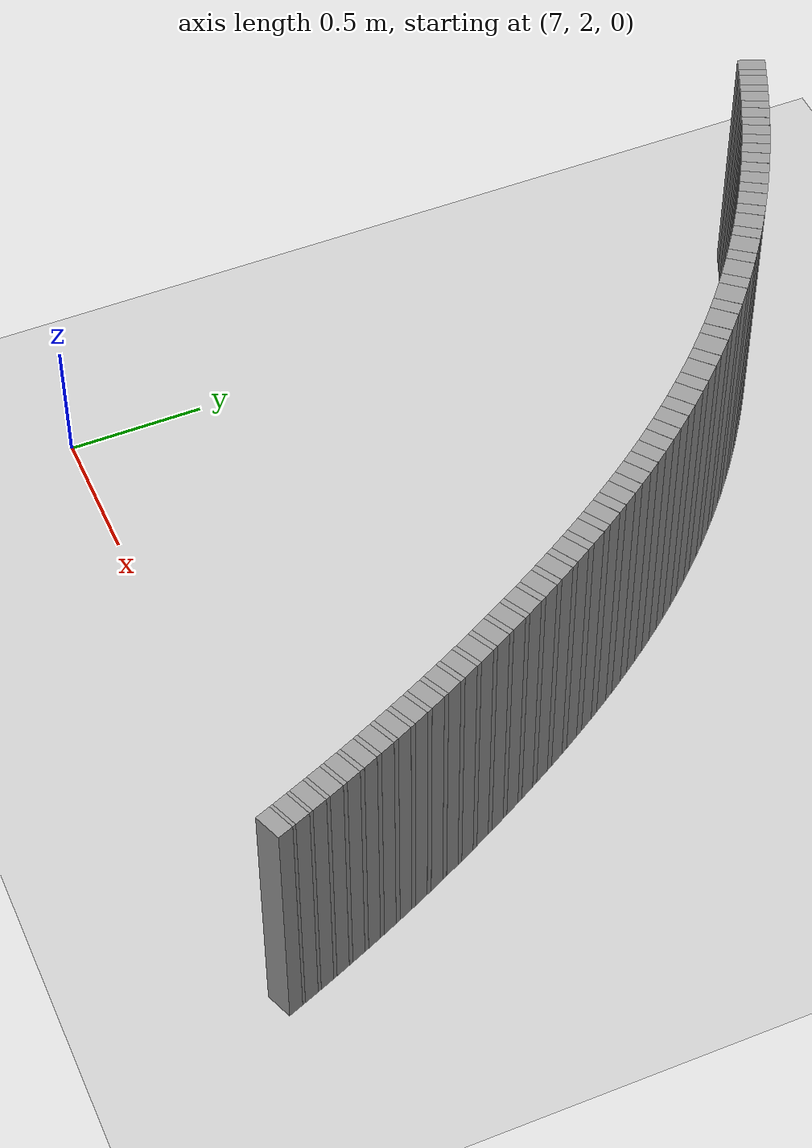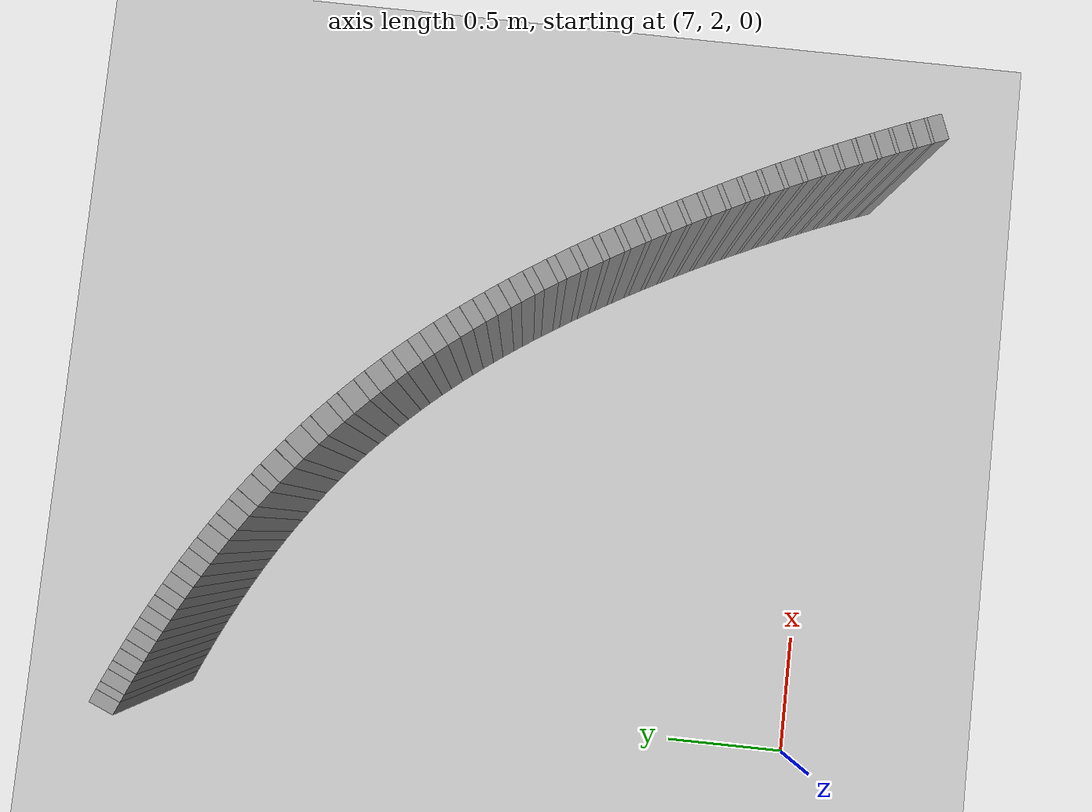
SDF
<sdf version="1.6">
 <world name="default">
  <include><uri>model://ground_plane</uri></include>
  <include><uri>model://sun</uri></include>
  <model name="wall_268_outward">
   <static>true</static>
   <link name="link">
    <collision name="collision">
     <geometry><box><size>0.0516063647858459 0.1 1.0</size></box></geometry>
    </collision>
    <visual name="visual">
     <geometry><box><size>0.0516063647858459 0.1 1.0</size></box></geometry>
     <material>
      <script><uri>file://media/materials/scripts/gazebo.material</uri><name>Gazebo/Gray</name></script>
     </material>
    </visual>
   </link>
   <pose>7.080253073074809 4.667760038448318 0.5 0 0 -0.39601819860987963</pose>
  </model>
  <model name="wall_269_outward">
   <static>true</static>
   <link name="link">
    <collision name="collision">
     <geometry><box><size>0.031169988583303544 0.1 1.0</size></box></geometry>
    </collision>
    <visual name="visual">
     <geometry><box><size>0.031169988583303544 0.1 1.0</size></box></geometry>
     <material>
      <script><uri>file://media/materials/scripts/gazebo.material</uri><name>Gazebo/Gray</name></script>
     </material>
    </visual>
   </link>
   <pose>7.118390697708541 4.651682776962022 0.5 0 0 -0.4038107746218307</pose>
  </model>
  <model name="wall_270_outward">
   <static>true</static>
   <link name="link">
    <collision name="collision">
     <geometry><box><size>0.05102715981106958 0.1 1.0</size></box></geometry>
    </collision>
    <visual name="visual">
     <geometry><box><size>0.05102715981106958 0.1 1.0</size></box></geometry>
     <material>
      <script><uri>file://media/materials/scripts/gazebo.material</uri><name>Gazebo/Gray</name></script>
     </material>
    </visual>
   </link>
   <pose>7.156104895291941 4.635351581167314 0.5 0 0 -0.41160335063380704</pose>
  </model>
  <model name="wall_271_outward">
   <static>true</static>
   <link name="link">
    <collision name="collision">
     <geometry><box><size>0.03389130507857987 0.1 1.0</size></box></geometry>
    </collision>
    <visual name="visual">
     <geometry><box><size>0.03389130507857987 0.1 1.0</size></box></geometry>
     <material>
      <script><uri>file://media/materials/scripts/gazebo.material</uri><name>Gazebo/Gray</name></script>
     </material>
    </visual>
   </link>
   <pose>7.194959955431102 4.6182331792746245 0.5 0 0 -0.4200762782823904</pose>
  </model>
  <model name="wall_272_outward">
   <static>true</static>
   <link name="link">
    <collision name="collision">
     <geometry><box><size>0.050430776725085495 0.1 1.0</size></box></geometry>
    </collision>
    <visual name="visual">
     <geometry><box><size>0.050430776725085495 0.1 1.0</size></box></geometry>
     <material>
      <script><uri>file://media/materials/scripts/gazebo.material</uri><name>Gazebo/Gray</name></script>
     </material>
    </visual>
   </link>
   <pose>7.233367466608639 4.600843936053424 0.5 0 0 -0.4285492059309481</pose>
  </model>
  <model name="wall_273_outward">
   <static>true</static>
   <link name="link">
    <collision name="collision">
     <geometry><box><size>0.03718043838161526 0.1 1.0</size></box></geometry>
    </collision>
    <visual name="visual">
     <geometry><box><size>0.03718043838161526 0.1 1.0</size></box></geometry>
     <material>
      <script><uri>file://media/materials/scripts/gazebo.material</uri><name>Gazebo/Gray</name></script>
     </material>
    </visual>
   </link>
   <pose>7.273139177934283 4.582483605716437 0.5 0 0 -0.4378444493796859</pose>
  </model>
  <model name="wall_274_outward">
   <static>true</static>
   <link name="link">
    <collision name="collision">
     <geometry><box><size>0.049822076071874194 0.1 1.0</size></box></geometry>
    </collision>
    <visual name="visual">
     <geometry><box><size>0.049822076071874194 0.1 1.0</size></box></geometry>
     <material>
      <script><uri>file://media/materials/scripts/gazebo.material</uri><name>Gazebo/Gray</name></script>
     </material>
    </visual>
   </link>
   <pose>7.312437711802996 4.563830332447013 0.5 0 0 -0.44713969282840726</pose>
  </model>
  <model name="wall_275_outward">
   <static>true</static>
   <link name="link">
    <collision name="collision">
     <geometry><box><size>0.04115001788878526 0.1 1.0</size></box></geometry>
    </collision>
    <visual name="visual">
     <geometry><box><size>0.04115001788878526 0.1 1.0</size></box></geometry>
     <material>
      <script><uri>file://media/materials/scripts/gazebo.material</uri><name>Gazebo/Gray</name></script>
     </material>
    </visual>
   </link>
   <pose>7.353359410760101 4.5439723169646555 0.5 0 0 -0.4574273787684024</pose>
  </model>
  <model name="wall_276_outward">
   <static>true</static>
   <link name="link">
    <collision name="collision">
     <geometry><box><size>0.049214630315882156 0.1 1.0</size></box></geometry>
    </collision>
    <visual name="visual">
     <geometry><box><size>0.049214630315882156 0.1 1.0</size></box></geometry>
     <material>
      <script><uri>file://media/materials/scripts/gazebo.material</uri><name>Gazebo/Gray</name></script>
     </material>
    </visual>
   </link>
   <pose>7.393783645405412 4.523791383375178 0.5 0 0 -0.4677150647083914</pose>
  </model>
  <model name="wall_277_outward">
   <static>true</static>
   <link name="link">
    <collision name="collision">
     <geometry><box><size>0.04576426751292394 0.1 1.0</size></box></geometry>
    </collision>
    <visual name="visual">
     <geometry><box><size>0.04576426751292394 0.1 1.0</size></box></geometry>
     <material>
      <script><uri>file://media/materials/scripts/gazebo.material</uri><name>Gazebo/Gray</name></script>
     </material>
    </visual>
   </link>
   <pose>7.436053397337286 4.5021478595647135 0.5 0 0 -0.4791563812034534</pose>
  </model>
  <model name="wall_278_outward">
   <static>true</static>
   <link name="link">
    <collision name="collision">
     <geometry><box><size>0.04863039326916041 0.1 1.0</size></box></geometry>
    </collision>
    <visual name="visual">
     <geometry><box><size>0.04863039326916041 0.1 1.0</size></box></geometry>
     <material>
      <script><uri>file://media/materials/scripts/gazebo.material</uri><name>Gazebo/Gray</name></script>
     </material>
    </visual>
   </link>
   <pose>7.477805894122145 4.480142310801195 0.5 0 0 -0.4905976976985535</pose>
  </model>
  <model name="wall_279_outward">
   <static>true</static>
   <link name="link">
    <collision name="collision">
     <geometry><box><size>0.05094955768476022 0.1 1.0</size></box></geometry>
    </collision>
    <visual name="visual">
     <geometry><box><size>0.05094955768476022 0.1 1.0</size></box></geometry>
     <material>
      <script><uri>file://media/materials/scripts/gazebo.material</uri><name>Gazebo/Gray</name></script>
     </material>
    </visual>
   </link>
   <pose>7.521568508480716 4.456398369629671 0.5 0 0 -0.5033354315662154</pose>
  </model>
  <model name="wall_280_outward">
   <static>true</static>
   <link name="link">
    <collision name="collision">
     <geometry><box><size>0.048098016357616194 0.1 1.0</size></box></geometry>
    </collision>
    <visual name="visual">
     <geometry><box><size>0.048098016357616194 0.1 1.0</size></box></geometry>
     <material>
      <script><uri>file://media/materials/scripts/gazebo.material</uri><name>Gazebo/Gray</name></script>
     </material>
    </visual>
   </link>
   <pose>7.564800822516758 4.432243181696583 0.5 0 0 -0.5160731654338826</pose>
  </model>
  <model name="wall_281_outward">
   <static>true</static>
   <link name="link">
    <collision name="collision">
     <geometry><box><size>0.0565333971682505 0.1 1.0</size></box></geometry>
    </collision>
    <visual name="visual">
     <geometry><box><size>0.0565333971682505 0.1 1.0</size></box></geometry>
     <material>
      <script><uri>file://media/materials/scripts/gazebo.material</uri><name>Gazebo/Gray</name></script>
     </material>
    </visual>
   </link>
   <pose>7.610103524752377 4.406080946525524 0.5 0 0 -0.5302069852946572</pose>
  </model>
  <model name="wall_282_outward">
   <static>true</static>
   <link name="link">
    <collision name="collision">
     <geometry><box><size>0.04765147935493681 0.1 1.0</size></box></geometry>
    </collision>
    <visual name="visual">
     <geometry><box><size>0.04765147935493681 0.1 1.0</size></box></geometry>
     <material>
      <script><uri>file://media/materials/scripts/gazebo.material</uri><name>Gazebo/Gray</name></script>
     </material>
    </visual>
   </link>
   <pose>7.6548714518258745 4.379447878824308 0.5 0 0 -0.5443408051554759</pose>
  </model>
  <model name="wall_283_outward">
   <static>true</static>
   <link name="link">
    <collision name="collision">
     <geometry><box><size>0.062195545859935635 0.1 1.0</size></box></geometry>
    </collision>
    <visual name="visual">
     <geometry><box><size>0.062195545859935635 0.1 1.0</size></box></geometry>
     <material>
      <script><uri>file://media/materials/scripts/gazebo.material</uri><name>Gazebo/Gray</name></script>
     </material>
    </visual>
   </link>
   <pose>7.701603188491934 4.35059379970133 0.5 0 0 -0.559890318225484</pose>
  </model>
  <model name="wall_284_outward">
   <static>true</static>
   <link name="link">
    <collision name="collision">
     <geometry><box><size>0.04732970117595756 0.1 1.0</size></box></geometry>
    </collision>
    <visual name="visual">
     <geometry><box><size>0.04732970117595756 0.1 1.0</size></box></geometry>
     <material>
      <script><uri>file://media/materials/scripts/gazebo.material</uri><name>Gazebo/Gray</name></script>
     </material>
    </visual>
   </link>
   <pose>7.747806445194113 4.321199479312671 0.5 0 0 -0.5754398312955041</pose>
  </model>
  <model name="wall_285_outward">
   <static>true</static>
   <link name="link">
    <collision name="collision">
     <geometry><box><size>0.06756052662925728 0.1 1.0</size></box></geometry>
    </collision>
    <visual name="visual">
     <geometry><box><size>0.06756052662925728 0.1 1.0</size></box></geometry>
     <material>
      <script><uri>file://media/materials/scripts/gazebo.material</uri><name>Gazebo/Gray</name></script>
     </material>
    </visual>
   </link>
   <pose>7.795685657463692 4.289461582785081 0.5 0 0 -0.5923307661156758</pose>
  </model>
  <model name="wall_286_outward">
   <static>true</static>
   <link name="link">
    <collision name="collision">
     <geometry><box><size>0.04717076383167026 0.1 1.0</size></box></geometry>
    </collision>
    <visual name="visual">
     <geometry><box><size>0.04717076383167026 0.1 1.0</size></box></geometry>
     <material>
      <script><uri>file://media/materials/scripts/gazebo.material</uri><name>Gazebo/Gray</name></script>
     </material>
    </visual>
   </link>
   <pose>7.84305339324159 4.257105940956764 0.5 0 0 -0.6092217009358157</pose>
  </model>
  <model name="wall_287_outward">
   <static>true</static>
   <link name="link">
    <collision name="collision">
     <geometry><box><size>0.0721833816383372 0.1 1.0</size></box></geometry>
    </collision>
    <visual name="visual">
     <geometry><box><size>0.0721833816383372 0.1 1.0</size></box></geometry>
     <material>
      <script><uri>file://media/materials/scripts/gazebo.material</uri><name>Gazebo/Gray</name></script>
     </material>
    </visual>
   </link>
   <pose>7.891616664854949 4.222426200032272 0.5 0 0 -0.6272685259348761</pose>
  </model>
  <model name="wall_288_outward">
   <static>true</static>
   <link name="link">
    <collision name="collision">
     <geometry><box><size>0.04720942778171306 0.1 1.0</size></box></geometry>
    </collision>
    <visual name="visual">
     <geometry><box><size>0.04720942778171306 0.1 1.0</size></box></geometry>
     <material>
      <script><uri>file://media/materials/scripts/gazebo.material</uri><name>Gazebo/Gray</name></script>
     </material>
    </visual>
   </link>
   <pose>7.9396957602056215 4.187045642256937 0.5 0 0 -0.6453153509338915</pose>
  </model>
  <model name="wall_289_outward">
   <static>true</static>
   <link name="link">
    <collision name="collision">
     <geometry><box><size>0.07552915220336574 0.1 1.0</size></box></geometry>
    </collision>
    <visual name="visual">
     <geometry><box><size>0.07552915220336574 0.1 1.0</size></box></geometry>
     <material>
      <script><uri>file://media/materials/scripts/gazebo.material</uri><name>Gazebo/Gray</name></script>
     </material>
    </visual>
   </link>
   <pose>7.988290045979889 4.149569419293267 0.5 0 0 -0.6641987612158292</pose>
  </model>
  <model name="wall_290_outward">
   <static>true</static>
   <link name="link">
    <collision name="collision">
     <geometry><box><size>0.04747261744502205 0.1 1.0</size></box></geometry>
    </collision>
    <visual name="visual">
     <geometry><box><size>0.04747261744502205 0.1 1.0</size></box></geometry>
     <material>
      <script><uri>file://media/materials/scripts/gazebo.material</uri><name>Gazebo/Gray</name></script>
     </material>
    </visual>
   </link>
   <pose>8.036436902912989 4.111308219979388 0.5 0 0 -0.6830821714977469</pose>
  </model>
  <model name="wall_291_outward">
   <static>true</static>
   <link name="link">
    <collision name="collision">
     <geometry><box><size>0.07740905343114708 0.1 1.0</size></box></geometry>
    </collision>
    <visual name="visual">
     <geometry><box><size>0.07740905343114708 0.1 1.0</size></box></geometry>
     <material>
      <script><uri>file://media/materials/scripts/gazebo.material</uri><name>Gazebo/Gray</name></script>
     </material>
    </visual>
   </link>
   <pose>8.08438955577947 4.071320010246333 0.5 0 0 -0.7024356429954967</pose>
  </model>
  <model name="wall_292_outward">
   <static>true</static>
   <link name="link">
    <collision name="collision">
     <geometry><box><size>0.04797645059830723 0.1 1.0</size></box></geometry>
    </collision>
    <visual name="visual">
     <geometry><box><size>0.04797645059830723 0.1 1.0</size></box></geometry>
     <material>
      <script><uri>file://media/materials/scripts/gazebo.material</uri><name>Gazebo/Gray</name></script>
     </material>
    </visual>
   </link>
   <pose>8.131937749340043 4.030464133107831 0.5 0 0 -0.721789114493231</pose>
  </model>
  <model name="wall_293_outward">
   <static>true</static>
   <link name="link">
    <collision name="collision">
     <geometry><box><size>0.07739045548146799 0.1 1.0</size></box></geometry>
    </collision>
    <visual name="visual">
     <geometry><box><size>0.07739045548146799 0.1 1.0</size></box></geometry>
     <material>
      <script><uri>file://media/materials/scripts/gazebo.material</uri><name>Gazebo/Gray</name></script>
     </material>
    </visual>
   </link>
   <pose>8.178489406304067 3.9884902004596055 0.5 0 0 -0.7411379356328862</pose>
  </model>
  <model name="wall_294_outward">
   <static>true</static>
   <link name="link">
    <collision name="collision">
     <geometry><box><size>0.04872167023151746 0.1 1.0</size></box></geometry>
    </collision>
    <visual name="visual">
     <geometry><box><size>0.04872167023151746 0.1 1.0</size></box></geometry>
     <material>
      <script><uri>file://media/materials/scripts/gazebo.material</uri><name>Gazebo/Gray</name></script>
     </material>
    </visual>
   </link>
   <pose>8.224684345524485 3.9455746816027473 0.5 0 0 -0.7604867567725592</pose>
  </model>
  <model name="wall_295_outward">
   <static>true</static>
   <link name="link">
    <collision name="collision">
     <geometry><box><size>0.07561181066201893 0.1 1.0</size></box></geometry>
    </collision>
    <visual name="visual">
     <geometry><box><size>0.07561181066201893 0.1 1.0</size></box></geometry>
     <material>
      <script><uri>file://media/materials/scripts/gazebo.material</uri><name>Gazebo/Gray</name></script>
     </material>
    </visual>
   </link>
   <pose>8.26922670635141 3.9022116490398857 0.5 0 0 -0.779390835358028</pose>
  </model>
  <model name="wall_296_outward">
   <static>true</static>
   <link name="link">
    <collision name="collision">
     <geometry><box><size>0.049692379155554516 0.1 1.0</size></box></geometry>
    </collision>
    <visual name="visual">
     <geometry><box><size>0.049692379155554516 0.1 1.0</size></box></geometry>
     <material>
      <script><uri>file://media/materials/scripts/gazebo.material</uri><name>Gazebo/Gray</name></script>
     </material>
    </visual>
   </link>
   <pose>8.313460500335086 3.857845887551974 0.5 0 0 -0.7982949139435327</pose>
  </model>
  <model name="wall_297_outward">
   <static>true</static>
   <link name="link">
    <collision name="collision">
     <geometry><box><size>0.07221466362774695 0.1 1.0</size></box></geometry>
    </collision>
    <visual name="visual">
     <geometry><box><size>0.07221466362774695 0.1 1.0</size></box></geometry>
     <material>
      <script><uri>file://media/materials/scripts/gazebo.material</uri><name>Gazebo/Gray</name></script>
     </material>
    </visual>
   </link>
   <pose>8.355530766604613 3.813742236496583 0.5 0 0 -0.8163495607141498</pose>
  </model>
  <model name="wall_298_outward">
   <static>true</static>
   <link name="link">
    <collision name="collision">
     <geometry><box><size>0.05085726344225865 0.1 1.0</size></box></geometry>
    </collision>
    <visual name="visual">
     <geometry><box><size>0.05085726344225865 0.1 1.0</size></box></geometry>
     <material>
      <script><uri>file://media/materials/scripts/gazebo.material</uri><name>Gazebo/Gray</name></script>
     </material>
    </visual>
   </link>
   <pose>8.397338518222835 3.7685926248917965 0.5 0 0 -0.8344042074847992</pose>
  </model>
  <model name="wall_299_outward">
   <static>true</static>
   <link name="link">
    <collision name="collision">
     <geometry><box><size>0.0675582030334034 0.1 1.0</size></box></geometry>
    </collision>
    <visual name="visual">
     <geometry><box><size>0.0675582030334034 0.1 1.0</size></box></geometry>
     <material>
      <script><uri>file://media/materials/scripts/gazebo.material</uri><name>Gazebo/Gray</name></script>
     </material>
    </visual>
   </link>
   <pose>8.436677642269427 3.724346224431522 0.5 0 0 -0.8512945613231221</pose>
  </model>
  <model name="wall_300_outward">
   <static>true</static>
   <link name="link">
    <collision name="collision">
     <geometry><box><size>0.05216880545344974 0.1 1.0</size></box></geometry>
    </collision>
    <visual name="visual">
     <geometry><box><size>0.05216880545344974 0.1 1.0</size></box></geometry>
     <material>
      <script><uri>file://media/materials/scripts/gazebo.material</uri><name>Gazebo/Gray</name></script>
     </material>
    </visual>
   </link>
   <pose>8.475794483534774 3.6790333067398953 0.5 0 0 -0.868184915161444</pose>
  </model>
  <model name="wall_301_outward">
   <static>true</static>
   <link name="link">
    <collision name="collision">
     <geometry><box><size>0.0620654923602422 0.1 1.0</size></box></geometry>
    </collision>
    <visual name="visual">
     <geometry><box><size>0.0620654923602422 0.1 1.0</size></box></geometry>
     <material>
      <script><uri>file://media/materials/scripts/gazebo.material</uri><name>Gazebo/Gray</name></script>
     </material>
    </visual>
   </link>
   <pose>8.512334430234315 3.6351356291668164 0.5 0 0 -0.8837019109337177</pose>
  </model>
  <model name="wall_302_outward">
   <static>true</static>
   <link name="link">
    <collision name="collision">
     <geometry><box><size>0.05356758185181445 0.1 1.0</size></box></geometry>
    </collision>
    <visual name="visual">
     <geometry><box><size>0.05356758185181445 0.1 1.0</size></box></geometry>
     <material>
      <script><uri>file://media/materials/scripts/gazebo.material</uri><name>Gazebo/Gray</name></script>
     </material>
    </visual>
   </link>
   <pose>8.548683755898235 3.5901769997073667 0.5 0 0 -0.8992189067059576</pose>
  </model>
  <model name="wall_303_outward">
   <static>true</static>
   <link name="link">
    <collision name="collision">
     <geometry><box><size>0.05616279122282179 0.1 1.0</size></box></geometry>
    </collision>
    <visual name="visual">
     <geometry><box><size>0.05616279122282179 0.1 1.0</size></box></geometry>
     <material>
      <script><uri>file://media/materials/scripts/gazebo.material</uri><name>Gazebo/Gray</name></script>
     </material>
    </visual>
   </link>
   <pose>8.582511678826704 3.546983110767514 0.5 0 0 -0.9132600658859212</pose>
  </model>
  <model name="wall_304_outward">
   <static>true</static>
   <link name="link">
    <collision name="collision">
     <geometry><box><size>0.05498789261907417 0.1 1.0</size></box></geometry>
    </collision>
    <visual name="visual">
     <geometry><box><size>0.05498789261907417 0.1 1.0</size></box></geometry>
     <material>
      <script><uri>file://media/materials/scripts/gazebo.material</uri><name>Gazebo/Gray</name></script>
     </material>
    </visual>
   </link>
   <pose>8.616170383367303 3.502761418982904 0.5 0 0 -0.9273012250658659</pose>
  </model>
  <model name="wall_305_outward">
   <static>true</static>
   <link name="link">
    <collision name="collision">
     <geometry><box><size>0.05023539870455018 0.1 1.0</size></box></geometry>
    </collision>
    <visual name="visual">
     <geometry><box><size>0.05023539870455018 0.1 1.0</size></box></geometry>
     <material>
      <script><uri>file://media/materials/scripts/gazebo.material</uri><name>Gazebo/Gray</name></script>
     </material>
    </visual>
   </link>
   <pose>8.647483568723475 3.46048422944133 0.5 0 0 -0.9398604049055904</pose>
  </model>
  <model name="wall_306_outward">
   <static>true</static>
   <link name="link">
    <collision name="collision">
     <geometry><box><size>0.05636109527204031 0.1 1.0</size></box></geometry>
    </collision>
    <visual name="visual">
     <geometry><box><size>0.05636109527204031 0.1 1.0</size></box></geometry>
     <material>
      <script><uri>file://media/materials/scripts/gazebo.material</uri><name>Gazebo/Gray</name></script>
     </material>
    </visual>
   </link>
   <pose>8.678637155585644 3.4172402066071452 0.5 0 0 -0.9524195847453228</pose>
  </model>
  <model name="wall_307_outward">
   <static>true</static>
   <link name="link">
    <collision name="collision">
     <geometry><box><size>0.04453944295091977 0.1 1.0</size></box></geometry>
    </collision>
    <visual name="visual">
     <geometry><box><size>0.04453944295091977 0.1 1.0</size></box></geometry>
     <material>
      <script><uri>file://media/materials/scripts/gazebo.material</uri><name>Gazebo/Gray</name></script>
     </material>
    </visual>
   </link>
   <pose>8.707680994001151 3.3759896636847384 0.5 0 0 -0.9635546755887132</pose>
  </model>
  <model name="wall_308_outward">
   <static>true</static>
   <link name="link">
    <collision name="collision">
     <geometry><box><size>0.05762078335668553 0.1 1.0</size></box></geometry>
    </collision>
    <visual name="visual">
     <geometry><box><size>0.05762078335668553 0.1 1.0</size></box></geometry>
     <material>
      <script><uri>file://media/materials/scripts/gazebo.material</uri><name>Gazebo/Gray</name></script>
     </material>
    </visual>
   </link>
   <pose>8.736563063852138 3.3338598114457225 0.5 0 0 -0.9746897664321592</pose>
  </model>
  <model name="wall_309_outward">
   <static>true</static>
   <link name="link">
    <collision name="collision">
     <geometry><box><size>0.03936391019920161 0.1 1.0</size></box></geometry>
    </collision>
    <visual name="visual">
     <geometry><box><size>0.03936391019920161 0.1 1.0</size></box></geometry>
     <material>
      <script><uri>file://media/materials/scripts/gazebo.material</uri><name>Gazebo/Gray</name></script>
     </material>
    </visual>
   </link>
   <pose>8.76362705164242 3.293623095075914 0.5 0 0 -0.9845309028301754</pose>
  </model>
  <model name="wall_310_outward">
   <static>true</static>
   <link name="link">
    <collision name="collision">
     <geometry><box><size>0.05870847908754893 0.1 1.0</size></box></geometry>
    </collision>
    <visual name="visual">
     <geometry><box><size>0.05870847908754893 0.1 1.0</size></box></geometry>
     <material>
      <script><uri>file://media/materials/scripts/gazebo.material</uri><name>Gazebo/Gray</name></script>
     </material>
    </visual>
   </link>
   <pose>8.790515097035058 3.252616687689755 0.5 0 0 -0.9943720392282176</pose>
  </model>
  <model name="wall_311_outward">
   <static>true</static>
   <link name="link">
    <collision name="collision">
     <geometry><box><size>0.03477562029848963 0.1 1.0</size></box></geometry>
    </collision>
    <visual name="visual">
     <geometry><box><size>0.03477562029848963 0.1 1.0</size></box></geometry>
     <material>
      <script><uri>file://media/materials/scripts/gazebo.material</uri><name>Gazebo/Gray</name></script>
     </material>
    </visual>
   </link>
   <pose>8.81586379259873 3.2133455244337417 0.5 0 0 -1.0030660538265521</pose>
  </model>
  <model name="wall_312_outward">
   <static>true</static>
   <link name="link">
    <collision name="collision">
     <geometry><box><size>0.0595758454590209 0.1 1.0</size></box></geometry>
    </collision>
    <visual name="visual">
     <geometry><box><size>0.0595758454590209 0.1 1.0</size></box></geometry>
     <material>
      <script><uri>file://media/materials/scripts/gazebo.material</uri><name>Gazebo/Gray</name></script>
     </material>
    </visual>
   </link>
   <pose>8.84101216515159 3.1734322436694242 0.5 0 0 -1.011760068424911</pose>
  </model>
  <model name="wall_313_outward">
   <static>true</static>
   <link name="link">
    <collision name="collision">
     <geometry><box><size>0.03084560427614737 0.1 1.0</size></box></geometry>
    </collision>
    <visual name="visual">
     <geometry><box><size>0.03084560427614737 0.1 1.0</size></box></geometry>
     <material>
      <script><uri>file://media/materials/scripts/gazebo.material</uri><name>Gazebo/Gray</name></script>
     </material>
    </visual>
   </link>
   <pose>8.864889481615432 3.1350414103651185 0.5 0 0 -1.0194715459233323</pose>
  </model>
  <model name="wall_314_outward">
   <static>true</static>
   <link name="link">
    <collision name="collision">
     <geometry><box><size>0.060190793125698645 0.1 1.0</size></box></geometry>
    </collision>
    <visual name="visual">
     <geometry><box><size>0.060190793125698645 0.1 1.0</size></box></geometry>
     <material>
      <script><uri>file://media/materials/scripts/gazebo.material</uri><name>Gazebo/Gray</name></script>
     </material>
    </visual>
   </link>
   <pose>8.888534490731583 3.096146778921461 0.5 0 0 -1.0271830234217</pose>
  </model>
  <model name="wall_315_outward">
   <static>true</static>
   <link name="link">
    <collision name="collision">
     <geometry><box><size>0.027577057920390217 0.1 1.0</size></box></geometry>
    </collision>
    <visual name="visual">
     <geometry><box><size>0.027577057920390217 0.1 1.0</size></box></geometry>
     <material>
      <script><uri>file://media/materials/scripts/gazebo.material</uri><name>Gazebo/Gray</name></script>
     </material>
    </visual>
   </link>
   <pose>8.911151124431381 3.0585400365044793 0.5 0 0 -1.0340773425180727</pose>
  </model>
  <model name="wall_316_outward">
   <static>true</static>
   <link name="link">
    <collision name="collision">
     <geometry><box><size>0.060536118994963466 0.1 1.0</size></box></geometry>
    </collision>
    <visual name="visual">
     <geometry><box><size>0.060536118994963466 0.1 1.0</size></box></geometry>
     <material>
      <script><uri>file://media/materials/scripts/gazebo.material</uri><name>Gazebo/Gray</name></script>
     </material>
    </visual>
   </link>
   <pose>8.93349839634538 3.0205721212708836 0.5 0 0 -1.0409716616144071</pose>
  </model>
  <model name="wall_317_outward">
   <static>true</static>
   <link name="link">
    <collision name="collision">
     <geometry><box><size>0.024992972010634523 0.1 1.0</size></box></geometry>
    </collision>
    <visual name="visual">
     <geometry><box><size>0.024992972010634523 0.1 1.0</size></box></geometry>
     <material>
      <script><uri>file://media/materials/scripts/gazebo.material</uri><name>Gazebo/Gray</name></script>
     </material>
    </visual>
   </link>
   <pose>8.955043331050266 2.9836315287795077 0.5 0 0 -1.0472199452735342</pose>
  </model>
  <model name="wall_318_outward">
   <static>true</static>
   <link name="link">
    <collision name="collision">
     <geometry><box><size>0.06061205123044814 0.1 1.0</size></box></geometry>
    </collision>
    <visual name="visual">
     <geometry><box><size>0.06061205123044814 0.1 1.0</size></box></geometry>
     <material>
      <script><uri>file://media/materials/scripts/gazebo.material</uri><name>Gazebo/Gray</name></script>
     </material>
    </visual>
   </link>
   <pose>8.976279468785922 2.9464688234209526 0.5 0 0 -1.0534682289327477</pose>
  </model>
  <model name="wall_319_outward">
   <static>true</static>
   <link name="link">
    <collision name="collision">
     <geometry><box><size>0.02301454917684403 0.1 1.0</size></box></geometry>
    </collision>
    <visual name="visual">
     <geometry><box><size>0.02301454917684403 0.1 1.0</size></box></geometry>
     <material>
      <script><uri>file://media/materials/scripts/gazebo.material</uri><name>Gazebo/Gray</name></script>
     </material>
    </visual>
   </link>
   <pose>8.99690100038205 2.9100944785656235 0.5 0 0 -1.0592218979724781</pose>
  </model>
  <model name="wall_320_outward">
   <static>true</static>
   <link name="link">
    <collision name="collision">
     <geometry><box><size>0.060435112909367816 0.1 1.0</size></box></geometry>
    </collision>
    <visual name="visual">
     <geometry><box><size>0.060435112909367816 0.1 1.0</size></box></geometry>
     <material>
      <script><uri>file://media/materials/scripts/gazebo.material</uri><name>Gazebo/Gray</name></script>
     </material>
    </visual>
   </link>
   <pose>9.01717557411622 2.8736267987068853 0.5 0 0 -1.0649755670122396</pose>
  </model>
  <model name="wall_321_outward">
   <static>true</static>
   <link name="link">
    <collision name="collision">
     <geometry><box><size>0.02159107303053125 0.1 1.0</size></box></geometry>
    </collision>
    <visual name="visual">
     <geometry><box><size>0.02159107303053125 0.1 1.0</size></box></geometry>
     <material>
      <script><uri>file://media/materials/scripts/gazebo.material</uri><name>Gazebo/Gray</name></script>
     </material>
    </visual>
   </link>
   <pose>9.036996415951574 2.8377213879827385 0.5 0 0 -1.0703733614817186</pose>
  </model>
  <model name="wall_322_outward">
   <static>true</static>
   <link name="link">
    <collision name="collision">
     <geometry><box><size>0.060036297031444495 0.1 1.0</size></box></geometry>
    </collision>
    <visual name="visual">
     <geometry><box><size>0.060036297031444495 0.1 1.0</size></box></geometry>
     <material>
      <script><uri>file://media/materials/scripts/gazebo.material</uri><name>Gazebo/Gray</name></script>
     </material>
    </visual>
   </link>
   <pose>9.05643631410111 2.801834930873734 0.5 0 0 -1.0757711559511367</pose>
  </model>
  <model name="wall_323_outward">
   <static>true</static>
   <link name="link">
    <collision name="collision">
     <geometry><box><size>0.02062314398982755 0.1 1.0</size></box></geometry>
    </collision>
    <visual name="visual">
     <geometry><box><size>0.02062314398982755 0.1 1.0</size></box></geometry>
     <material>
      <script><uri>file://media/materials/scripts/gazebo.material</uri><name>Gazebo/Gray</name></script>
     </material>
    </visual>
   </link>
   <pose>9.075548253754198 2.766321385696897 0.5 0 0 -1.0809269647908146</pose>
  </model>
  <model name="wall_324_outward">
   <static>true</static>
   <link name="link">
    <collision name="collision">
     <geometry><box><size>0.059456959012732145 0.1 1.0</size></box></geometry>
    </collision>
    <visual name="visual">
     <geometry><box><size>0.059456959012732145 0.1 1.0</size></box></geometry>
     <material>
      <script><uri>file://media/materials/scripts/gazebo.material</uri><name>Gazebo/Gray</name></script>
     </material>
    </visual>
   </link>
   <pose>9.094252089393171 2.730918502934616 0.5 0 0 -1.0860827736305216</pose>
  </model>
  <model name="wall_325_outward">
   <static>true</static>
   <link name="link">
    <collision name="collision">
     <geometry><box><size>0.02003975325977494 0.1 1.0</size></box></geometry>
    </collision>
    <visual name="visual">
     <geometry><box><size>0.02003975325977494 0.1 1.0</size></box></geometry>
     <material>
      <script><uri>file://media/materials/scripts/gazebo.material</uri><name>Gazebo/Gray</name></script>
     </material>
    </visual>
   </link>
   <pose>9.112728556753733 2.6957255420924833 0.5 0 0 -1.09109273290351</pose>
  </model>
  <model name="wall_326_outward">
   <static>true</static>
   <link name="link">
    <collision name="collision">
     <geometry><box><size>0.0587482521059671 0.1 1.0</size></box></geometry>
    </collision>
    <visual name="visual">
     <geometry><box><size>0.0587482521059671 0.1 1.0</size></box></geometry>
     <material>
      <script><uri>file://media/materials/scripts/gazebo.material</uri><name>Gazebo/Gray</name></script>
     </material>
    </visual>
   </link>
   <pose>9.130778806216064 2.6607102803589004 0.5 0 0 -1.0961026921765182</pose>
  </model>
  <model name="wall_327_outward">
   <static>true</static>
   <link name="link">
    <collision name="collision">
     <geometry><box><size>0.01978572759164311 0.1 1.0</size></box></geometry>
    </collision>
    <visual name="visual">
     <geometry><box><size>0.01978572759164311 0.1 1.0</size></box></geometry>
     <material>
      <script><uri>file://media/materials/scripts/gazebo.material</uri><name>Gazebo/Gray</name></script>
     </material>
    </visual>
   </link>
   <pose>9.148682832147152 2.6257626733281203 0.5 0 0 -1.1010491442454906</pose>
  </model>
  <model name="wall_328_outward">
   <static>true</static>
   <link name="link">
    <collision name="collision">
     <geometry><box><size>0.057964770968524267 0.1 1.0</size></box></geometry>
    </collision>
    <visual name="visual">
     <geometry><box><size>0.057964770968524267 0.1 1.0</size></box></geometry>
     <material>
      <script><uri>file://media/materials/scripts/gazebo.material</uri><name>Gazebo/Gray</name></script>
     </material>
    </visual>
   </link>
   <pose>9.16615214458931 2.5910337068283624 0.5 0 0 -1.1059955963145276</pose>
  </model>
  <model name="wall_329_outward">
   <static>true</static>
   <link name="link">
    <collision name="collision">
     <geometry><box><size>0.019632406574356772 0.1 1.0</size></box></geometry>
    </collision>
    <visual name="visual">
     <geometry><box><size>0.019632406574356772 0.1 1.0</size></box></geometry>
     <material>
      <script><uri>file://media/materials/scripts/gazebo.material</uri><name>Gazebo/Gray</name></script>
     </material>
    </visual>
   </link>
   <pose>9.183500284979266 2.556329734977216 0.5 0 0 -1.1109037176638947</pose>
  </model>
  <model name="wall_330_outward">
   <static>true</static>
   <link name="link">
    <collision name="collision">
     <geometry><box><size>0.057162404542598064 0.1 1.0</size></box></geometry>
    </collision>
    <visual name="visual">
     <geometry><box><size>0.057162404542598064 0.1 1.0</size></box></geometry>
     <material>
      <script><uri>file://media/materials/scripts/gazebo.material</uri><name>Gazebo/Gray</name></script>
     </material>
    </visual>
   </link>
   <pose>9.200417188257777 2.5218598585844245 0.5 0 0 -1.115811839013312</pose>
  </model>
  <model name="wall_331_outward">
   <static>true</static>
   <link name="link">
    <collision name="collision">
     <geometry><box><size>0.019618323884305778 0.1 1.0</size></box></geometry>
    </collision>
    <visual name="visual">
     <geometry><box><size>0.019618323884305778 0.1 1.0</size></box></geometry>
     <material>
      <script><uri>file://media/materials/scripts/gazebo.material</uri><name>Gazebo/Gray</name></script>
     </material>
    </visual>
   </link>
   <pose>9.217244504250147 2.4873539930407995 0.5 0 0 -1.120716439647798</pose>
  </model>
  <model name="wall_332_outward">
   <static>true</static>
   <link name="link">
    <collision name="collision">
     <geometry><box><size>0.05639381606461555 0.1 1.0</size></box></geometry>
    </collision>
    <visual name="visual">
     <geometry><box><size>0.05639381606461555 0.1 1.0</size></box></geometry>
     <material>
      <script><uri>file://media/materials/scripts/gazebo.material</uri><name>Gazebo/Gray</name></script>
     </material>
    </visual>
   </link>
   <pose>9.23365389947697 2.4530730004960675 0.5 0 0 -1.1256210402823268</pose>
  </model>
  <model name="wall_333_outward">
   <static>true</static>
   <link name="link">
    <collision name="collision">
     <geometry><box><size>0.019507273560800977 0.1 1.0</size></box></geometry>
    </collision>
    <visual name="visual">
     <geometry><box><size>0.019507273560800977 0.1 1.0</size></box></geometry>
     <material>
      <script><uri>file://media/materials/scripts/gazebo.material</uri><name>Gazebo/Gray</name></script>
     </material>
    </visual>
   </link>
   <pose>9.249953034084857 2.4188009197068836 0.5 0 0 -1.1304978780039412</pose>
  </model>
  <model name="wall_334_outward">
   <static>true</static>
   <link name="link">
    <collision name="collision">
     <geometry><box><size>0.05570742660754721 0.1 1.0</size></box></geometry>
    </collision>
    <visual name="visual">
     <geometry><box><size>0.05570742660754721 0.1 1.0</size></box></geometry>
     <material>
      <script><uri>file://media/materials/scripts/gazebo.material</uri><name>Gazebo/Gray</name></script>
     </material>
    </visual>
   </link>
   <pose>9.265858619657088 2.384722793781652 0.5 0 0 -1.135374715725497</pose>
  </model>
  <model name="wall_335_outward">
   <static>true</static>
   <link name="link">
    <collision name="collision">
     <geometry><box><size>0.0192724332210846 0.1 1.0</size></box></geometry>
    </collision>
    <visual name="visual">
     <geometry><box><size>0.0192724332210846 0.1 1.0</size></box></geometry>
     <material>
      <script><uri>file://media/materials/scripts/gazebo.material</uri><name>Gazebo/Gray</name></script>
     </material>
    </visual>
   </link>
   <pose>9.281629455415702 2.3507114816394563 0.5 0 0 -1.1401928426723122</pose>
  </model>
  <model name="wall_336_outward">
   <static>true</static>
   <link name="link">
    <collision name="collision">
     <geometry><box><size>0.0551423300203607 0.1 1.0</size></box></geometry>
    </collision>
    <visual name="visual">
     <geometry><box><size>0.0551423300203607 0.1 1.0</size></box></geometry>
     <material>
      <script><uri>file://media/materials/scripts/gazebo.material</uri><name>Gazebo/Gray</name></script>
     </material>
    </visual>
   </link>
   <pose>9.297039685664386 2.3168454531870837 0.5 0 0 -1.1450109696192394</pose>
  </model>
  <model name="wall_337_outward">
   <static>true</static>
   <link name="link">
    <collision name="collision">
     <geometry><box><size>0.01884949953504658 0.1 1.0</size></box></geometry>
    </collision>
    <visual name="visual">
     <geometry><box><size>0.01884949953504658 0.1 1.0</size></box></geometry>
     <material>
      <script><uri>file://media/materials/scripts/gazebo.material</uri><name>Gazebo/Gray</name></script>
     </material>
    </visual>
   </link>
   <pose>9.312279844947039 2.2831344833869753 0.5 0 0 -1.1497233619440064</pose>
  </model>
  <model name="wall_338_outward">
   <static>true</static>
   <link name="link">
    <collision name="collision">
     <geometry><box><size>0.0547309298148179 0.1 1.0</size></box></geometry>
    </collision>
    <visual name="visual">
     <geometry><box><size>0.0547309298148179 0.1 1.0</size></box></geometry>
     <material>
      <script><uri>file://media/materials/scripts/gazebo.material</uri><name>Gazebo/Gray</name></script>
     </material>
    </visual>
   </link>
   <pose>9.327199658431214 2.2495054284781366 0.5 0 0 -1.1544357542688448</pose>
  </model>
  <model name="wall_339_outward">
   <static>true</static>
   <link name="link">
    <collision name="collision">
     <geometry><box><size>0.01820185268744743 0.1 1.0</size></box></geometry>
    </collision>
    <visual name="visual">
     <geometry><box><size>0.01820185268744743 0.1 1.0</size></box></geometry>
     <material>
      <script><uri>file://media/materials/scripts/gazebo.material</uri><name>Gazebo/Gray</name></script>
     </material>
    </visual>
   </link>
   <pose>9.341910016749624 2.216137811062921 0.5 0 0 -1.1589862331450662</pose>
  </model>
  <model name="wall_340_outward">
   <static>true</static>
   <link name="link">
    <collision name="collision">
     <geometry><box><size>0.05449543746921942 0.1 1.0</size></box></geometry>
    </collision>
    <visual name="visual">
     <geometry><box><size>0.05449543746921942 0.1 1.0</size></box></geometry>
     <material>
      <script><uri>file://media/materials/scripts/gazebo.material</uri><name>Gazebo/Gray</name></script>
     </material>
    </visual>
   </link>
   <pose>9.356345506585964 2.1827786219638354 0.5 0 0 -1.1635367120212297</pose>
  </model>
  <model name="wall_341_outward">
   <static>true</static>
   <link name="link">
    <collision name="collision">
     <geometry><box><size>0.017281719450450927 0.1 1.0</size></box></geometry>
    </collision>
    <visual name="visual">
     <geometry><box><size>0.017281719450450927 0.1 1.0</size></box></geometry>
     <material>
      <script><uri>file://media/materials/scripts/gazebo.material</uri><name>Gazebo/Gray</name></script>
     </material>
    </visual>
   </link>
   <pose>9.370526466882502 2.1498106673094144 0.5 0 0 -1.1678571553249053</pose>
  </model>
  <model name="wall_342_outward">
   <static>true</static>
   <link name="link">
    <collision name="collision">
     <geometry><box><size>0.0544485148194539 0.1 1.0</size></box></geometry>
    </collision>
    <visual name="visual">
     <geometry><box><size>0.0544485148194539 0.1 1.0</size></box></geometry>
     <material>
      <script><uri>file://media/materials/scripts/gazebo.material</uri><name>Gazebo/Gray</name></script>
     </material>
    </visual>
   </link>
   <pose>9.384481733160754 2.1167720114779303 0.5 0 0 -1.1721775986285716</pose>
  </model>
  <model name="wall_343_outward">
   <static>true</static>
   <link name="link">
    <collision name="collision">
     <geometry><box><size>0.016159056587496078 0.1 1.0</size></box></geometry>
    </collision>
    <visual name="visual">
     <geometry><box><size>0.016159056587496078 0.1 1.0</size></box></geometry>
     <material>
      <script><uri>file://media/materials/scripts/gazebo.material</uri><name>Gazebo/Gray</name></script>
     </material>
    </visual>
   </link>
   <pose>9.398154641047412 2.084223504826488 0.5 0 0 -1.1762173737634543</pose>
  </model>
  <model name="wall_344_outward">
   <static>true</static>
   <link name="link">
    <collision name="collision">
     <geometry><box><size>0.0545958054055147 0.1 1.0</size></box></geometry>
    </collision>
    <visual name="visual">
     <geometry><box><size>0.0545958054055147 0.1 1.0</size></box></geometry>
     <material>
      <script><uri>file://media/materials/scripts/gazebo.material</uri><name>Gazebo/Gray</name></script>
     </material>
    </visual>
   </link>
   <pose>9.411652527575999 2.051522341486594 0.5 0 0 -1.1802571488984017</pose>
  </model>
  <model name="wall_345_outward">
   <static>true</static>
   <link name="link">
    <collision name="collision">
     <geometry><box><size>0.01488746591163128 0.1 1.0</size></box></geometry>
    </collision>
    <visual name="visual">
     <geometry><box><size>0.01488746591163128 0.1 1.0</size></box></geometry>
     <material>
      <script><uri>file://media/materials/scripts/gazebo.material</uri><name>Gazebo/Gray</name></script>
     </material>
    </visual>
   </link>
   <pose>9.424852580218221 2.0193861151414847 0.5 0 0 -1.1839790239690657</pose>
  </model>
  <model name="wall_346_outward">
   <static>true</static>
   <link name="link">
    <collision name="collision">
     <geometry><box><size>0.0549335372365379 0.1 1.0</size></box></geometry>
    </collision>
    <visual name="visual">
     <geometry><box><size>0.0549335372365379 0.1 1.0</size></box></geometry>
     <material>
      <script><uri>file://media/materials/scripts/gazebo.material</uri><name>Gazebo/Gray</name></script>
     </material>
    </visual>
   </link>
   <pose>9.43792756893922 1.9870166085354812 0.5 0 0 -1.1877008990397673</pose>
  </model>
  <model name="wall_347_outward">
   <static>true</static>
   <link name="link">
    <collision name="collision">
     <geometry><box><size>0.01352219270756913 0.1 1.0</size></box></geometry>
    </collision>
    <visual name="visual">
     <geometry><box><size>0.01352219270756913 0.1 1.0</size></box></geometry>
     <material>
      <script><uri>file://media/materials/scripts/gazebo.material</uri><name>Gazebo/Gray</name></script>
     </material>
    </visual>
   </link>
   <pose>9.450700501758245 1.9552613443186937 0.5 0 0 -1.1910814536556322</pose>
  </model>
  <model name="wall_348_outward">
   <static>true</static>
   <link name="link">
    <collision name="collision">
     <geometry><box><size>0.05545241096922365 0.1 1.0</size></box></geometry>
    </collision>
    <visual name="visual">
     <geometry><box><size>0.05545241096922365 0.1 1.0</size></box></geometry>
     <material>
      <script><uri>file://media/materials/scripts/gazebo.material</uri><name>Gazebo/Gray</name></script>
     </material>
    </visual>
   </link>
   <pose>9.463396303469972 1.9231959663437586 0.5 0 0 -1.1944620082713726</pose>
  </model>
  <model name="wall_349_outward">
   <static>true</static>
   <link name="link">
    <collision name="collision">
     <geometry><box><size>0.012162323818003773 0.1 1.0</size></box></geometry>
    </collision>
    <visual name="visual">
     <geometry><box><size>0.012162323818003773 0.1 1.0</size></box></geometry>
     <material>
      <script><uri>file://media/materials/scripts/gazebo.material</uri><name>Gazebo/Gray</name></script>
     </material>
    </visual>
   </link>
   <pose>9.475803770789218 1.8917477345014766 0.5 0 0 -1.197502593910935</pose>
  </model>
  <model name="wall_350_outward">
   <static>true</static>
   <link name="link">
    <collision name="collision">
     <geometry><box><size>0.056137121329034874 0.1 1.0</size></box></geometry>
    </collision>
    <visual name="visual">
     <geometry><box><size>0.056137121329034874 0.1 1.0</size></box></geometry>
     <material>
      <script><uri>file://media/materials/scripts/gazebo.material</uri><name>Gazebo/Gray</name></script>
     </material>
    </visual>
   </link>
   <pose>9.488178124072334 1.8599188583883839 0.5 0 0 -1.2005431795505899</pose>
  </model>
 </world>
</sdf>
